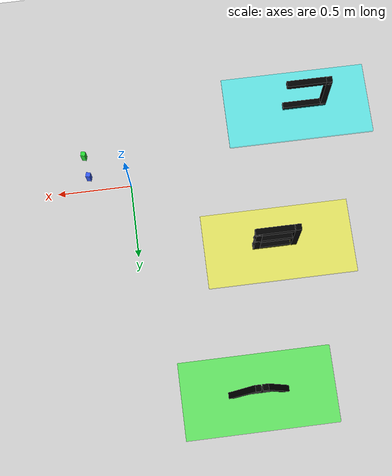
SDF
<sdf version="1.4">
 <world name="default">
  <model name="ground_plane">
   <static>1</static>
   <link name="link">
    <collision name="collision">
     <geometry><plane><normal>0 0 1</normal><size>100 100</size></plane></geometry>
     <surface><friction><ode><mu>100</mu><mu2>50</mu2></ode></friction></surface>
    </collision>
    <visual name="visual">
     <cast_shadows>0</cast_shadows>
     <geometry><plane><normal>0 0 1</normal><size>100 100</size></plane></geometry>
     <material>
      <script><uri>file://media/materials/scripts/gazebo.material</uri><name>Gazebo/Grey</name></script>
     </material>
    </visual>
    <velocity_decay><linear>0</linear><angular>0</angular></velocity_decay>
   </link>
  </model>
  <model name="zone_a">
   <static>true</static>
   <pose>-0.672194 1.490520 0.010000 0.000000 0.000000 0.000000</pose>
   <link name="base">
    <visual name="visual">
     <geometry><box><size>1.0 0.5 0.02</size></box></geometry>
     <material><ambient>0 1 0 0.5</ambient><diffuse>0 1 0 0.5</diffuse></material>
    </visual>
   </link>
   <link name="letter_A_1">
    <pose>-0.1 0 0.22 0 0.4 0</pose>
    <visual name="v">
     <geometry><box><size>0.04 0.04 0.4</size></box></geometry>
     <material><ambient>0 0 0 1</ambient><diffuse>0 0 0 1</diffuse></material>
    </visual>
   </link>
   <link name="letter_A_2">
    <pose>0.1 0 0.22 0 -0.4 0</pose>
    <visual name="v">
     <geometry><box><size>0.04 0.04 0.4</size></box></geometry>
     <material><ambient>0 0 0 1</ambient><diffuse>0 0 0 1</diffuse></material>
    </visual>
   </link>
   <link name="letter_A_3">
    <pose>0 0 0.25 0 0 0</pose>
    <visual name="v">
     <geometry><box><size>0.15 0.04 0.04</size></box></geometry>
     <material><ambient>0 0 0 1</ambient><diffuse>0 0 0 1</diffuse></material>
    </visual>
   </link>
  </model>
  <model name="zone_b">
   <static>true</static>
   <pose>-0.939022 0.526776 0.010000 0.000000 0.000000 0.000000</pose>
   <link name="base">
    <visual name="visual">
     <geometry><box><size>1.0 0.5 0.02</size></box></geometry>
     <material><ambient>1 1 0 0.5</ambient><diffuse>1 1 0 0.5</diffuse></material>
    </visual>
   </link>
   <link name="letter_B_vertical_stroke">
    <pose>-0.1 0 0.2 0 0 0</pose>
    <visual name="v">
     <geometry><box><size>0.04 0.04 0.4</size></box></geometry>
     <material><ambient>0 0 0 1</ambient><diffuse>0 0 0 1</diffuse></material>
    </visual>
   </link>
   <link name="letter_B_top_horizontal">
    <pose>0.05 0 0.38 0 0 0</pose>
    <visual name="v">
     <geometry><box><size>0.25 0.04 0.04</size></box></geometry>
     <material><ambient>0 0 0 1</ambient><diffuse>0 0 0 1</diffuse></material>
    </visual>
   </link>
   <link name="letter_B_middle_horizontal">
    <pose>0.05 0 0.2 0 0 0</pose>
    <visual name="v">
     <geometry><box><size>0.25 0.04 0.04</size></box></geometry>
     <material><ambient>0 0 0 1</ambient><diffuse>0 0 0 1</diffuse></material>
    </visual>
   </link>
   <link name="letter_B_bottom_horizontal">
    <pose>0.05 0 0.02 0 0 0</pose>
    <visual name="v">
     <geometry><box><size>0.25 0.04 0.04</size></box></geometry>
     <material><ambient>0 0 0 1</ambient><diffuse>0 0 0 1</diffuse></material>
    </visual>
   </link>
   <link name="letter_B_top_vertical_stroke">
    <pose>0.15 0 0.29 0 0 0</pose>
    <visual name="v">
     <geometry><box><size>0.04 0.04 0.2</size></box></geometry>
     <material><ambient>0 0 0 1</ambient><diffuse>0 0 0 1</diffuse></material>
    </visual>
   </link>
   <link name="letter_B_bottom_vertical_stroke">
    <pose>0.15 0 0.11 0 0 0</pose>
    <visual name="v">
     <geometry><box><size>0.04 0.04 0.2</size></box></geometry>
     <material><ambient>0 0 0 1</ambient><diffuse>0 0 0 1</diffuse></material>
    </visual>
   </link>
  </model>
  <model name="zone_c">
   <static>true</static>
   <pose>-1.205849 -0.436968 0.010000 0.000000 0.000000 0.000000</pose>
   <link name="base">
    <visual name="visual">
     <geometry><box><size>1.0 0.5 0.02</size></box></geometry>
     <material><ambient>0 1 1 0.5</ambient><diffuse>0 1 1 0.5</diffuse></material>
    </visual>
   </link>
   <link name="letter_C_1">
    <pose>-0.05 0 0.38 0 0 0</pose>
    <visual name="v">
     <geometry><box><size>0.3 0.04 0.04</size></box></geometry>
     <material><ambient>0 0 0 1</ambient><diffuse>0 0 0 1</diffuse></material>
    </visual>
   </link>
   <link name="letter_C_2">
    <pose>-0.05 0 0.02 0 0 0</pose>
    <visual name="v">
     <geometry><box><size>0.3 0.04 0.04</size></box></geometry>
     <material><ambient>0 0 0 1</ambient><diffuse>0 0 0 1</diffuse></material>
    </visual>
   </link>
   <link name="letter_C_3">
    <pose>-0.18 0 0.2 0 0 0</pose>
    <visual name="v">
     <geometry><box><size>0.04 0.04 0.4</size></box></geometry>
     <material><ambient>0 0 0 1</ambient><diffuse>0 0 0 1</diffuse></material>
    </visual>
   </link>
  </model>
  <model name="moveit_pick_stand">
   <static>true</static>
   <pose>0.293852 -0.229612 0.073000 0.000000 0.000000 -0.270100</pose>
   <link name="stand">
    <collision name="collision"><geometry><box><size>0.03 0.03 0.10</size></box></geometry></collision>
    <visual name="visual">
     <geometry><box><size>0.03 0.03 0.10</size></box></geometry>
     <material><ambient>0.15 0.85 0.20 1</ambient><diffuse>0.15 0.85 0.20 1</diffuse></material>
    </visual>
   </link>
  </model>
  <model name="moveit_place_stand">
   <static>true</static>
   <pose>0.273383 -0.078678 0.073000 0.000000 0.000000 -0.270100</pose>
   <link name="stand">
    <collision name="collision"><geometry><box><size>0.03 0.03 0.10</size></box></geometry></collision>
    <visual name="visual">
     <geometry><box><size>0.03 0.03 0.10</size></box></geometry>
     <material><ambient>0.20 0.35 0.95 1</ambient><diffuse>0.20 0.35 0.95 1</diffuse></material>
    </visual>
   </link>
  </model>
 </world>
</sdf>
